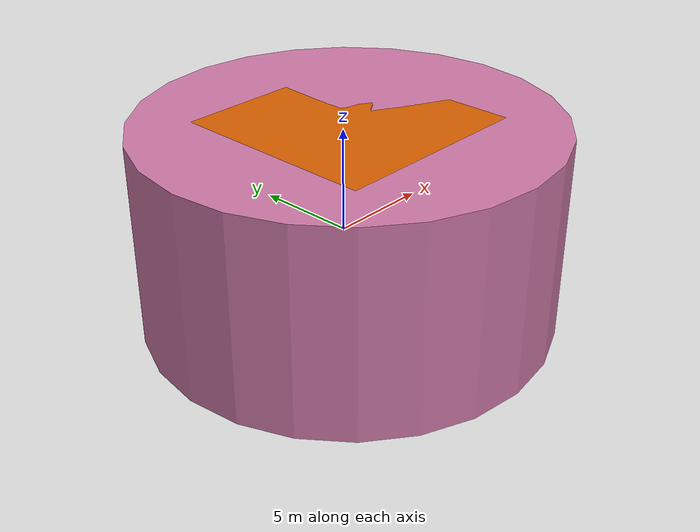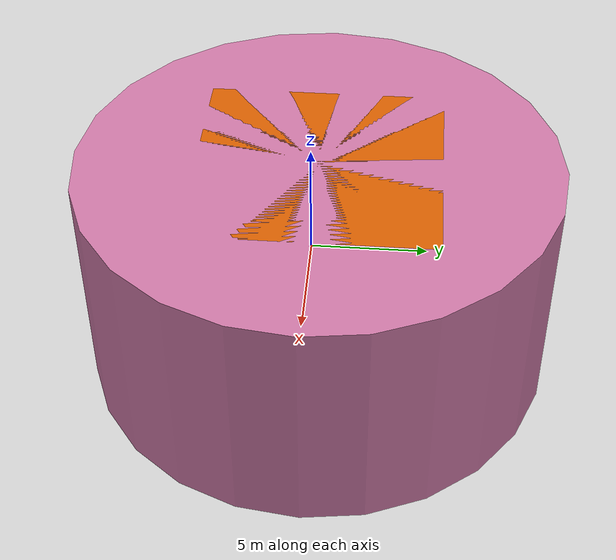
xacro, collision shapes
<?xml version="1.0"?>
<!-- Revolute-Revolute Manipulator -->
<robot name="robotx" xmlns:xacro="http://www.ros.org/wiki/xacro">

    <!-- Constants for robot dimensions -->
    <xacro:property name="PI" value="3.1415926535897931"/>

    <!-- Import all Gazebo-customization elements, including Gazebo colors -->
    <xacro:include filename="materials.xacro" />
    <xacro:include filename="base.urdf.xacro" />
    <xacro:include filename="sensor.urdf.xacro" />

</robot>

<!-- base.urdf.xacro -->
<!-- Revolute-Revolute Manipulator -->
<robot name="bixi" xmlns:xacro="http://www.ros.org/wiki/xacro">
    <xacro:include filename="$(find bixi_description)/urdf/wheel.urdf.xacro" />
    <!-- Constants for robot dimensions -->
    <xacro:property name="M_PI" value="3.1415926535897931"/>

    <!-- this section must be changed according to the real robot -->
    <!-- Base Size -->
    <property name="base_mass" value="10" />
    <property name="base_x_size" value="0.8" />
    <property name="base_y_size" value="0.4" />
    <property name="base_z_size" value="0.1" />

    <!-- Wheel Mounting Positions -->
    <xacro:property name="wheelbase" value="0.6" />
    <xacro:property name="track" value="0.55" />
    <xacro:property name="wheel_vertical_offset" value="0.05" />

    <!-- Wheel Properties -->
    <xacro:property name="wheel_radius" value="0.075" />

    <!-- base link is the center of the robot's bottom plate -->
    <link name="base_link">
        <visual>
            <origin xyz="0 0 0" rpy="0 0 0" />
            <geometry>
                <mesh filename="package://bixi_description/meshes/chasis.dae" scale="1 1 1" />
            </geometry>
        </visual>
        <collision>
            <origin xyz="0 0 0" rpy="0 0 0" />
            <geometry>
                <box size="${base_x_size} ${base_y_size} ${base_z_size}"/>
            </geometry>
        </collision>
        <inertial>
            <mass value="${base_mass}" />
            <origin xyz="0 0 0" />
            <inertia ixx="${1/12*base_mass*(base_x_size*base_x_size + base_z_size*base_z_size)}"
                iyy="${1/12*base_mass*(base_y_size*base_y_size + base_z_size*base_z_size)}"
                izz="${1/12*base_mass*(base_y_size*base_y_size + base_x_size*base_x_size)}"
                ixy="0" ixz="0" iyz="0" />
        </inertial>
    </link>

    <!-- Husky wheel macros -->
    <xacro:wheel ccw="1" wheel_prefix="front_left">
        <origin xyz="${wheelbase/2} ${track/2} -${wheel_vertical_offset}" rpy="0 0 0" />
    </xacro:wheel>
    <xacro:wheel ccw="0" wheel_prefix="front_right">
        <origin xyz="${wheelbase/2} ${-track/2} -${wheel_vertical_offset}" rpy="0 0 0" />
    </xacro:wheel>
    <xacro:wheel ccw="0" wheel_prefix="rear_left">
        <origin xyz="${-wheelbase/2} ${track/2} -${wheel_vertical_offset}" rpy="0 0 0" />
    </xacro:wheel>
    <xacro:wheel ccw="1" wheel_prefix="rear_right">
        <origin xyz="${-wheelbase/2} ${-track/2} -${wheel_vertical_offset}" rpy="0 0 0" />
    </xacro:wheel>

</robot>

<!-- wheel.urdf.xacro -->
<robot xmlns:xacro="http://www.ros.org/wiki/xacro" name="wheel">

    <!-- this section must be changed according to the real robot -->
    <!-- Wheel Properties -->
    <xacro:property name="M_PI" value="3.1415926535897931"/>
    <xacro:property name="wheel_mass" value="0.158" />
    <xacro:property name="wheel_length" value="0.05" />
    <xacro:property name="wheel_radius" value="0.075" />
    <xacro:macro name="wheel" params="ccw wheel_prefix *joint_pose">
        <link name="${wheel_prefix}_wheel_link">
            <inertial>
                <mass value="${wheel_mass}" />
                <origin xyz="0 0 0" />
                <inertia ixx="${1/12*wheel_mass*(3*wheel_radius*wheel_radius + wheel_length*wheel_length)}"
                    iyy="${1/12*wheel_mass*(3*wheel_radius*wheel_radius + wheel_length*wheel_length)}"
                    izz="${1/2*wheel_mass*wheel_radius*wheel_radius}"
                    ixy="0" ixz="0" iyz="0" />
            </inertial>
            <visual>
                <origin xyz="0 0 0" rpy="0 0 0" />
                <geometry>
                    <xacro:unless value="${ccw == 0}">
                        <mesh filename="package://bixi_description/meshes/mec_f_l.dae" scale="1 1 1"/>
                    </xacro:unless>
                    <xacro:if value="${ccw == 0}">
                        <mesh filename="package://bixi_description/meshes/mec_f_r.dae" scale="1 1 1"/>
                    </xacro:if>
                </geometry>
            </visual>
            <collision>
                <origin xyz="0 0 0" rpy="${M_PI/2} 0 0" />
                <geometry>
                    <cylinder length="${wheel_length}" radius="${wheel_radius}" />
                </geometry>
            </collision>
        </link>

        <gazebo reference="${wheel_prefix}_wheel_link">
            <mu1 value="1.0"/>
            <mu2 value="1.0"/>
            <kp value="10000000.0" />
            <kd value="1.0" />
            <fdir1 value="1 0 0"/>
        </gazebo>

        <joint name="${wheel_prefix}_wheel" type="continuous">
            <parent link="base_link"/>
            <child link="${wheel_prefix}_wheel_link"/>
            <xacro:insert_block name="joint_pose"/>
            <axis xyz="0 1 0" rpy="0 0 0" />
        </joint>

        <transmission name="${wheel_prefix}_wheel_trans">
            <type>transmission_interface/SimpleTransmission</type>
            <actuator name="${wheel_prefix}_wheel_motor">
                <hardwareInterface>VelocityJointInterface</hardwareInterface>
                <mechanicalReduction>1</mechanicalReduction>
            </actuator>
            <joint name="${wheel_prefix}_wheel">
                <hardwareInterface>VelocityJointInterface</hardwareInterface>
            </joint>
        </transmission>
    </xacro:macro>
</robot>

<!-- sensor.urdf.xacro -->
<!-- Revolute-Revolute Manipulator -->
<robot name="bixi" xmlns:xacro="http://www.ros.org/wiki/xacro">
    <!-- Constants for robot dimensions -->
    <xacro:property name="M_PI" value="3.1415926535897931"/>

    <!-- this section must be changed according to the real robot -->
    <!-- imu dimension -->
    <property name="imu_mass" value="10" />
    <property name="imu_w" value="10" />
    <property name="imu_l" value="10" />
    <property name="imu_h" value="10" />
    <!-- imu_position -->
    <property name="imu_x" value="0.8" />
    <property name="imu_y" value="0.4" />
    <property name="imu_z" value="0.1" />
    <property name="imu_yaw" value="0" />

    <!-- lidar dimension -->
    <property name="lidar_mass" value="10" />
    <property name="lidar_r" value="10" />
    <property name="lidar_l" value="10" />
    <!-- lidar_position -->
    <property name="lidar_x" value="0.8" />
    <property name="lidar_y" value="0.4" />
    <property name="lidar_z" value="0.1" />
    <property name="lidar_yaw" value="0" />

    <!-- encoder dimension -->
    <property name="encoder_mass" value="10" />
    <property name="encoder_w" value="10" />
    <property name="encoder_l" value="10" />
    <property name="encoder_h" value="10" />
    <!-- encoder_position -->
    <property name="encoder_x" value="0.8" />
    <property name="encoder_y" value="0.4" />
    <property name="encoder_z" value="0.1" />
    <property name="encoder_yaw" value="0" />

    <!-- imu link wrt base link -->
    <joint name="imu_joint" type="fixed">
        <origin xyz="${imu_x} ${imu_y} ${imu_z}" rpy="0 0 ${imu_yaw}" />
        <parent link="base_link" />
        <child link="imu_link" />
    </joint>

    <link name="imu_link">
        <visual>
            <origin xyz="0 0 0" rpy="0 0 0" />
            <geometry>
                <box size="${imu_w} ${imu_l} ${imu_h}"/>
            </geometry>
        </visual>
        <collision>
            <origin xyz="0 0 0" rpy="0 0 0" />
            <geometry>
                <box size="${imu_w} ${imu_l} ${imu_h}"/>
            </geometry>
        </collision>
        <inertial>
            <mass value="${imu_mass}" />
            <origin xyz="0 0 0" />
            <inertia ixx="${1/12*imu_mass*(imu_x*imu_x + imu_z*imu_z)}"
                iyy="${1/12*imu_mass*(imu_y*imu_y + imu_z*imu_z)}"
                izz="${1/12*imu_mass*(imu_y*imu_y + imu_x*imu_x)}"
                ixy="0" ixz="0" iyz="0" />
        </inertial>
    </link>

    <!-- lidar link wrt base link -->
    <joint name="lidar_joint" type="fixed">
        <origin xyz="${lidar_x} ${lidar_y} ${lidar_z}" rpy="0 0 ${lidar_yaw}" />
        <parent link="base_link" />
        <child link="lidar_link" />
    </joint>

    <link name="lidar_link">
        <visual>
            <origin xyz="0 0 0" rpy="0 0 0" />
            <geometry>
                <cylinder length="${lidar_l}" radius="${lidar_r}" />
            </geometry>
        </visual>
        <collision>
            <origin xyz="0 0 0" rpy="0 0 0" />
            <geometry>
                <cylinder length="${lidar_l}" radius="${lidar_r}" />
            </geometry>
        </collision>
        <inertial>
            <mass value="${lidar_mass}" />
            <origin xyz="0 0 0" />
            <inertia ixx="${1/12*lidar_mass*(3*lidar_r*lidar_r + lidar_l*lidar_l)}"
                iyy="${1/12*lidar_mass*(3*lidar_r*lidar_r+ lidar_l*lidar_l)}"
                izz="${1/2*lidar_mass*lidar_r*lidar_r}"
                ixy="0" ixz="0" iyz="0" />
        </inertial>
    </link>

    <!-- encoder link wrt base link -->
    <joint name="encoder_joint" type="fixed">
        <origin xyz="${encoder_x} ${encoder_y} ${encoder_z}" rpy="0 0 ${encoder_yaw}" />
        <parent link="base_link" />
        <child link="encoder_link" />
    </joint>

    <link name="encoder_link">
        <visual>
            <origin xyz="0 0 0" rpy="0 0 0" />
            <geometry>
                <box size="${encoder_w} ${encoder_l} ${encoder_h}"/>
            </geometry>
        </visual>
        <collision>
            <origin xyz="0 0 0" rpy="0 0 0" />
            <geometry>
                <box size="${encoder_w} ${encoder_l} ${encoder_h}"/>
            </geometry>
        </collision>
        <inertial>
            <mass value="${encoder_mass}" />
            <origin xyz="0 0 0" />
            <inertia ixx="${1/12*encoder_mass*(encoder_x*encoder_x + encoder_z*encoder_z)}"
                iyy="${1/12*encoder_mass*(encoder_y*encoder_y + encoder_z*encoder_z)}"
                izz="${1/12*encoder_mass*(encoder_y*encoder_y + encoder_x*encoder_x)}"
                ixy="0" ixz="0" iyz="0" />
        </inertial>
    </link>

</robot>
